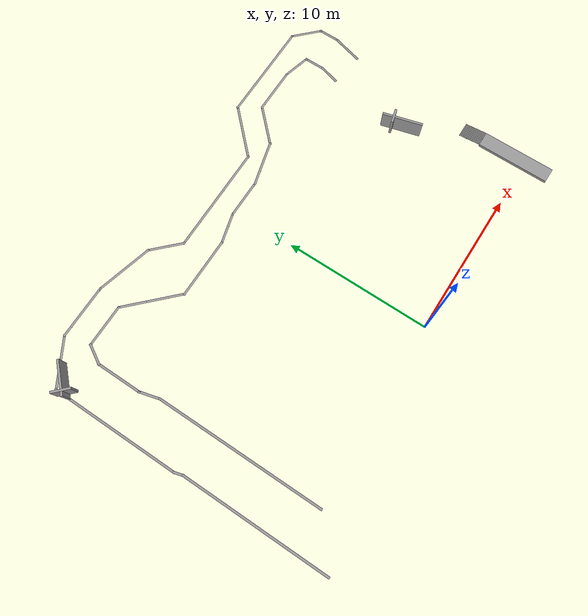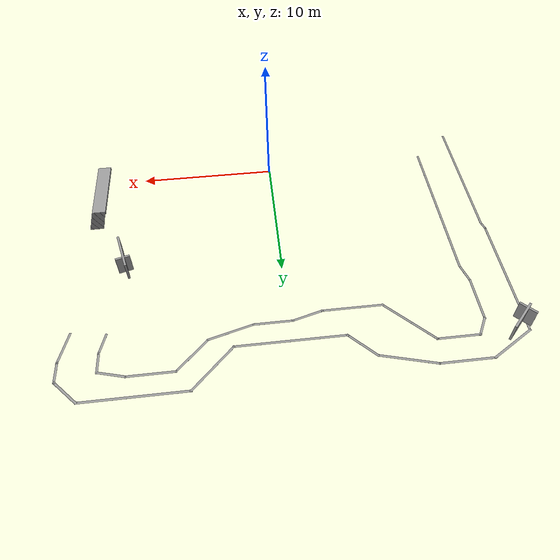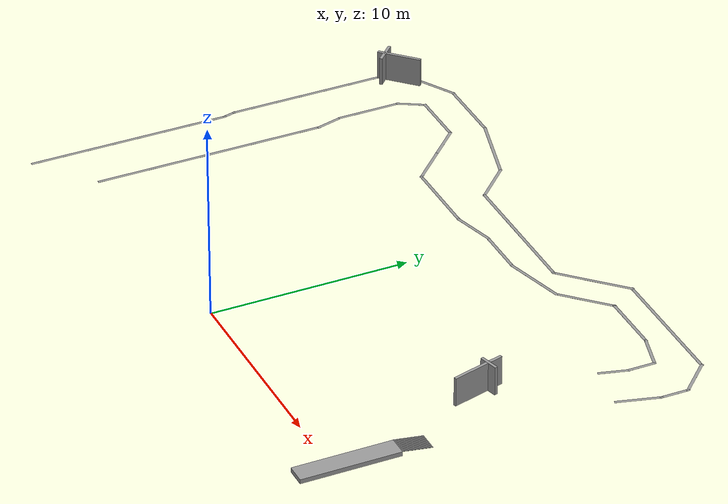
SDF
<sdf version="1.7">
 <model name="Course2023">
  <pose>-0.154528 0.080991 0 0 -0 0</pose>
  <link name="Stairs_12">
   <visual name="Stairs_12_Visual_0">
    <pose>13.5207 4.63123 0.00375 0 -0 0</pose>
    <geometry><box><size>1 0.05 0.0075</size></box></geometry>
    <material>
     <script><uri>file://media/materials/scripts/gazebo.material</uri><name>Gazebo/Grey</name></script>
     <ambient>1 1 1 1</ambient>
    </material>
    <meta><layer>0</layer></meta>
   </visual>
   <collision name="Stairs_12_Collision_0">
    <geometry><box><size>1 0.05 0.0075</size></box></geometry>
    <pose>13.5207 4.63123 0.00375 0 -0 0</pose>
   </collision>
   <visual name="Stairs_12_Visual_1">
    <pose>13.5207 4.58123 0.01125 0 -0 0</pose>
    <geometry><box><size>1 0.05 0.0075</size></box></geometry>
    <material>
     <script><uri>file://media/materials/scripts/gazebo.material</uri><name>Gazebo/Grey</name></script>
     <ambient>1 1 1 1</ambient>
    </material>
    <meta><layer>0</layer></meta>
   </visual>
   <collision name="Stairs_12_Collision_1">
    <geometry><box><size>1 0.05 0.0075</size></box></geometry>
    <pose>13.5207 4.58123 0.01125 0 -0 0</pose>
   </collision>
   <visual name="Stairs_12_Visual_2">
    <pose>13.5207 4.53123 0.01875 0 -0 0</pose>
    <geometry><box><size>1 0.05 0.0075</size></box></geometry>
    <material>
     <script><uri>file://media/materials/scripts/gazebo.material</uri><name>Gazebo/Grey</name></script>
     <ambient>1 1 1 1</ambient>
    </material>
    <meta><layer>0</layer></meta>
   </visual>
   <collision name="Stairs_12_Collision_2">
    <geometry><box><size>1 0.05 0.0075</size></box></geometry>
    <pose>13.5207 4.53123 0.01875 0 -0 0</pose>
   </collision>
   <visual name="Stairs_12_Visual_3">
    <pose>13.5207 4.48123 0.02625 0 -0 0</pose>
    <geometry><box><size>1 0.05 0.0075</size></box></geometry>
    <material>
     <script><uri>file://media/materials/scripts/gazebo.material</uri><name>Gazebo/Grey</name></script>
     <ambient>1 1 1 1</ambient>
    </material>
    <meta><layer>0</layer></meta>
   </visual>
   <collision name="Stairs_12_Collision_3">
    <geometry><box><size>1 0.05 0.0075</size></box></geometry>
    <pose>13.5207 4.48123 0.02625 0 -0 0</pose>
   </collision>
   <visual name="Stairs_12_Visual_4">
    <pose>13.5207 4.43123 0.03375 0 -0 0</pose>
    <geometry><box><size>1 0.05 0.0075</size></box></geometry>
    <material>
     <script><uri>file://media/materials/scripts/gazebo.material</uri><name>Gazebo/Grey</name></script>
     <ambient>1 1 1 1</ambient>
    </material>
    <meta><layer>0</layer></meta>
   </visual>
   <collision name="Stairs_12_Collision_4">
    <geometry><box><size>1 0.05 0.0075</size></box></geometry>
    <pose>13.5207 4.43123 0.03375 0 -0 0</pose>
   </collision>
   <visual name="Stairs_12_Visual_5">
    <pose>13.5207 4.38123 0.04125 0 -0 0</pose>
    <geometry><box><size>1 0.05 0.0075</size></box></geometry>
    <material>
     <script><uri>file://media/materials/scripts/gazebo.material</uri><name>Gazebo/Grey</name></script>
     <ambient>1 1 1 1</ambient>
    </material>
    <meta><layer>0</layer></meta>
   </visual>
   <collision name="Stairs_12_Collision_5">
    <geometry><box><size>1 0.05 0.0075</size></box></geometry>
    <pose>13.5207 4.38123 0.04125 0 -0 0</pose>
   </collision>
   <visual name="Stairs_12_Visual_6">
    <pose>13.5207 4.33123 0.04875 0 -0 0</pose>
    <geometry><box><size>1 0.05 0.0075</size></box></geometry>
    <material>
     <script><uri>file://media/materials/scripts/gazebo.material</uri><name>Gazebo/Grey</name></script>
     <ambient>1 1 1 1</ambient>
    </material>
    <meta><layer>0</layer></meta>
   </visual>
   <collision name="Stairs_12_Collision_6">
    <geometry><box><size>1 0.05 0.0075</size></box></geometry>
    <pose>13.5207 4.33123 0.04875 0 -0 0</pose>
   </collision>
   <visual name="Stairs_12_Visual_7">
    <pose>13.5207 4.28123 0.05625 0 -0 0</pose>
    <geometry><box><size>1 0.05 0.0075</size></box></geometry>
    <material>
     <script><uri>file://media/materials/scripts/gazebo.material</uri><name>Gazebo/Grey</name></script>
     <ambient>1 1 1 1</ambient>
    </material>
    <meta><layer>0</layer></meta>
   </visual>
   <collision name="Stairs_12_Collision_7">
    <geometry><box><size>1 0.05 0.0075</size></box></geometry>
    <pose>13.5207 4.28123 0.05625 0 -0 0</pose>
   </collision>
   <visual name="Stairs_12_Visual_8">
    <pose>13.5207 4.23123 0.06375 0 -0 0</pose>
    <geometry><box><size>1 0.05 0.0075</size></box></geometry>
    <material>
     <script><uri>file://media/materials/scripts/gazebo.material</uri><name>Gazebo/Grey</name></script>
     <ambient>1 1 1 1</ambient>
    </material>
    <meta><layer>0</layer></meta>
   </visual>
   <collision name="Stairs_12_Collision_8">
    <geometry><box><size>1 0.05 0.0075</size></box></geometry>
    <pose>13.5207 4.23123 0.06375 0 -0 0</pose>
   </collision>
   <visual name="Stairs_12_Visual_9">
    <pose>13.5207 4.18123 0.07125 0 -0 0</pose>
    <geometry><box><size>1 0.05 0.0075</size></box></geometry>
    <material>
     <script><uri>file://media/materials/scripts/gazebo.material</uri><name>Gazebo/Grey</name></script>
     <ambient>1 1 1 1</ambient>
    </material>
    <meta><layer>0</layer></meta>
   </visual>
   <collision name="Stairs_12_Collision_9">
    <geometry><box><size>1 0.05 0.0075</size></box></geometry>
    <pose>13.5207 4.18123 0.07125 0 -0 0</pose>
   </collision>
   <visual name="Stairs_12_Visual_10">
    <pose>13.5207 4.13123 0.07875 0 -0 0</pose>
    <geometry><box><size>1 0.05 0.0075</size></box></geometry>
    <material>
     <script><uri>file://media/materials/scripts/gazebo.material</uri><name>Gazebo/Grey</name></script>
     <ambient>1 1 1 1</ambient>
    </material>
    <meta><layer>0</layer></meta>
   </visual>
   <collision name="Stairs_12_Collision_10">
    <geometry><box><size>1 0.05 0.0075</size></box></geometry>
    <pose>13.5207 4.13123 0.07875 0 -0 0</pose>
   </collision>
   <visual name="Stairs_12_Visual_11">
    <pose>13.5207 4.08123 0.08625 0 -0 0</pose>
    <geometry><box><size>1 0.05 0.0075</size></box></geometry>
    <material>
     <script><uri>file://media/materials/scripts/gazebo.material</uri><name>Gazebo/Grey</name></script>
     <ambient>1 1 1 1</ambient>
    </material>
    <meta><layer>0</layer></meta>
   </visual>
   <collision name="Stairs_12_Collision_11">
    <geometry><box><size>1 0.05 0.0075</size></box></geometry>
    <pose>13.5207 4.08123 0.08625 0 -0 0</pose>
   </collision>
   <visual name="Stairs_12_Visual_12">
    <pose>13.5207 4.03123 0.09375 0 -0 0</pose>
    <geometry><box><size>1 0.05 0.0075</size></box></geometry>
    <material>
     <script><uri>file://media/materials/scripts/gazebo.material</uri><name>Gazebo/Grey</name></script>
     <ambient>1 1 1 1</ambient>
    </material>
    <meta><layer>0</layer></meta>
   </visual>
   <collision name="Stairs_12_Collision_12">
    <geometry><box><size>1 0.05 0.0075</size></box></geometry>
    <pose>13.5207 4.03123 0.09375 0 -0 0</pose>
   </collision>
   <visual name="Stairs_12_Visual_13">
    <pose>13.5207 3.98123 0.10125 0 -0 0</pose>
    <geometry><box><size>1 0.05 0.0075</size></box></geometry>
    <material>
     <script><uri>file://media/materials/scripts/gazebo.material</uri><name>Gazebo/Grey</name></script>
     <ambient>1 1 1 1</ambient>
    </material>
    <meta><layer>0</layer></meta>
   </visual>
   <collision name="Stairs_12_Collision_13">
    <geometry><box><size>1 0.05 0.0075</size></box></geometry>
    <pose>13.5207 3.98123 0.10125 0 -0 0</pose>
   </collision>
   <visual name="Stairs_12_Visual_14">
    <pose>13.5207 3.93123 0.10875 0 -0 0</pose>
    <geometry><box><size>1 0.05 0.0075</size></box></geometry>
    <material>
     <script><uri>file://media/materials/scripts/gazebo.material</uri><name>Gazebo/Grey</name></script>
     <ambient>1 1 1 1</ambient>
    </material>
    <meta><layer>0</layer></meta>
   </visual>
   <collision name="Stairs_12_Collision_14">
    <geometry><box><size>1 0.05 0.0075</size></box></geometry>
    <pose>13.5207 3.93123 0.10875 0 -0 0</pose>
   </collision>
   <visual name="Stairs_12_Visual_15">
    <pose>13.5207 3.88123 0.11625 0 -0 0</pose>
    <geometry><box><size>1 0.05 0.0075</size></box></geometry>
    <material>
     <script><uri>file://media/materials/scripts/gazebo.material</uri><name>Gazebo/Grey</name></script>
     <ambient>1 1 1 1</ambient>
    </material>
    <meta><layer>0</layer></meta>
   </visual>
   <collision name="Stairs_12_Collision_15">
    <geometry><box><size>1 0.05 0.0075</size></box></geometry>
    <pose>13.5207 3.88123 0.11625 0 -0 0</pose>
   </collision>
   <visual name="Stairs_12_Visual_16">
    <pose>13.5207 3.83123 0.12375 0 -0 0</pose>
    <geometry><box><size>1 0.05 0.0075</size></box></geometry>
    <material>
     <script><uri>file://media/materials/scripts/gazebo.material</uri><name>Gazebo/Grey</name></script>
     <ambient>1 1 1 1</ambient>
    </material>
    <meta><layer>0</layer></meta>
   </visual>
   <collision name="Stairs_12_Collision_16">
    <geometry><box><size>1 0.05 0.0075</size></box></geometry>
    <pose>13.5207 3.83123 0.12375 0 -0 0</pose>
   </collision>
   <visual name="Stairs_12_Visual_17">
    <pose>13.5207 3.78123 0.13125 0 -0 0</pose>
    <geometry><box><size>1 0.05 0.0075</size></box></geometry>
    <material>
     <script><uri>file://media/materials/scripts/gazebo.material</uri><name>Gazebo/Grey</name></script>
     <ambient>1 1 1 1</ambient>
    </material>
    <meta><layer>0</layer></meta>
   </visual>
   <collision name="Stairs_12_Collision_17">
    <geometry><box><size>1 0.05 0.0075</size></box></geometry>
    <pose>13.5207 3.78123 0.13125 0 -0 0</pose>
   </collision>
   <visual name="Stairs_12_Visual_18">
    <pose>13.5207 3.73123 0.13875 0 -0 0</pose>
    <geometry><box><size>1 0.05 0.0075</size></box></geometry>
    <material>
     <script><uri>file://media/materials/scripts/gazebo.material</uri><name>Gazebo/Grey</name></script>
     <ambient>1 1 1 1</ambient>
    </material>
    <meta><layer>0</layer></meta>
   </visual>
   <collision name="Stairs_12_Collision_18">
    <geometry><box><size>1 0.05 0.0075</size></box></geometry>
    <pose>13.5207 3.73123 0.13875 0 -0 0</pose>
   </collision>
   <visual name="Stairs_12_Visual_19">
    <pose>13.5207 3.68123 0.14625 0 -0 0</pose>
    <geometry><box><size>1 0.05 0.0075</size></box></geometry>
    <material>
     <script><uri>file://media/materials/scripts/gazebo.material</uri><name>Gazebo/Grey</name></script>
     <ambient>1 1 1 1</ambient>
    </material>
    <meta><layer>0</layer></meta>
   </visual>
   <collision name="Stairs_12_Collision_19">
    <geometry><box><size>1 0.05 0.0075</size></box></geometry>
    <pose>13.5207 3.68123 0.14625 0 -0 0</pose>
   </collision>
   <visual name="Stairs_12_Visual_20">
    <pose>13.5207 3.63123 0.15375 0 -0 0</pose>
    <geometry><box><size>1 0.05 0.0075</size></box></geometry>
    <material>
     <script><uri>file://media/materials/scripts/gazebo.material</uri><name>Gazebo/Grey</name></script>
     <ambient>1 1 1 1</ambient>
    </material>
    <meta><layer>0</layer></meta>
   </visual>
   <collision name="Stairs_12_Collision_20">
    <geometry><box><size>1 0.05 0.0075</size></box></geometry>
    <pose>13.5207 3.63123 0.15375 0 -0 0</pose>
   </collision>
   <visual name="Stairs_12_Visual_21">
    <pose>13.5207 3.58123 0.16125 0 -0 0</pose>
    <geometry><box><size>1 0.05 0.0075</size></box></geometry>
    <material>
     <script><uri>file://media/materials/scripts/gazebo.material</uri><name>Gazebo/Grey</name></script>
     <ambient>1 1 1 1</ambient>
    </material>
    <meta><layer>0</layer></meta>
   </visual>
   <collision name="Stairs_12_Collision_21">
    <geometry><box><size>1 0.05 0.0075</size></box></geometry>
    <pose>13.5207 3.58123 0.16125 0 -0 0</pose>
   </collision>
   <visual name="Stairs_12_Visual_22">
    <pose>13.5207 3.53123 0.16875 0 -0 0</pose>
    <geometry><box><size>1 0.05 0.0075</size></box></geometry>
    <material>
     <script><uri>file://media/materials/scripts/gazebo.material</uri><name>Gazebo/Grey</name></script>
     <ambient>1 1 1 1</ambient>
    </material>
    <meta><layer>0</layer></meta>
   </visual>
   <collision name="Stairs_12_Collision_22">
    <geometry><box><size>1 0.05 0.0075</size></box></geometry>
    <pose>13.5207 3.53123 0.16875 0 -0 0</pose>
   </collision>
   <visual name="Stairs_12_Visual_23">
    <pose>13.5207 3.48123 0.17625 0 -0 0</pose>
    <geometry><box><size>1 0.05 0.0075</size></box></geometry>
    <material>
     <script><uri>file://media/materials/scripts/gazebo.material</uri><name>Gazebo/Grey</name></script>
     <ambient>1 1 1 1</ambient>
    </material>
    <meta><layer>0</layer></meta>
   </visual>
   <collision name="Stairs_12_Collision_23">
    <geometry><box><size>1 0.05 0.0075</size></box></geometry>
    <pose>13.5207 3.48123 0.17625 0 -0 0</pose>
   </collision>
   <visual name="Stairs_12_Visual_24">
    <pose>13.5207 3.43123 0.18375 0 -0 0</pose>
    <geometry><box><size>1 0.05 0.0075</size></box></geometry>
    <material>
     <script><uri>file://media/materials/scripts/gazebo.material</uri><name>Gazebo/Grey</name></script>
     <ambient>1 1 1 1</ambient>
    </material>
    <meta><layer>0</layer></meta>
   </visual>
   <collision name="Stairs_12_Collision_24">
    <geometry><box><size>1 0.05 0.0075</size></box></geometry>
    <pose>13.5207 3.43123 0.18375 0 -0 0</pose>
   </collision>
   <visual name="Stairs_12_Visual_25">
    <pose>13.5207 3.38123 0.19125 0 -0 0</pose>
    <geometry><box><size>1 0.05 0.0075</size></box></geometry>
    <material>
     <script><uri>file://media/materials/scripts/gazebo.material</uri><name>Gazebo/Grey</name></script>
     <ambient>1 1 1 1</ambient>
    </material>
    <meta><layer>0</layer></meta>
   </visual>
   <collision name="Stairs_12_Collision_25">
    <geometry><box><size>1 0.05 0.0075</size></box></geometry>
    <pose>13.5207 3.38123 0.19125 0 -0 0</pose>
   </collision>
   <visual name="Stairs_12_Visual_26">
    <pose>13.5207 3.33123 0.19875 0 -0 0</pose>
    <geometry><box><size>1 0.05 0.0075</size></box></geometry>
    <material>
     <script><uri>file://media/materials/scripts/gazebo.material</uri><name>Gazebo/Grey</name></script>
     <ambient>1 1 1 1</ambient>
    </material>
    <meta><layer>0</layer></meta>
   </visual>
   <collision name="Stairs_12_Collision_26">
    <geometry><box><size>1 0.05 0.0075</size></box></geometry>
    <pose>13.5207 3.33123 0.19875 0 -0 0</pose>
   </collision>
   <visual name="Stairs_12_Visual_27">
    <pose>13.5207 3.28123 0.20625 0 -0 0</pose>
    <geometry><box><size>1 0.05 0.0075</size></box></geometry>
    <material>
     <script><uri>file://media/materials/scripts/gazebo.material</uri><name>Gazebo/Grey</name></script>
     <ambient>1 1 1 1</ambient>
    </material>
    <meta><layer>0</layer></meta>
   </visual>
   <collision name="Stairs_12_Collision_27">
    <geometry><box><size>1 0.05 0.0075</size></box></geometry>
    <pose>13.5207 3.28123 0.20625 0 -0 0</pose>
   </collision>
   <visual name="Stairs_12_Visual_28">
    <pose>13.5207 3.23123 0.21375 0 -0 0</pose>
    <geometry><box><size>1 0.05 0.0075</size></box></geometry>
    <material>
     <script><uri>file://media/materials/scripts/gazebo.material</uri><name>Gazebo/Grey</name></script>
     <ambient>1 1 1 1</ambient>
    </material>
    <meta><layer>0</layer></meta>
   </visual>
   <collision name="Stairs_12_Collision_28">
    <geometry><box><size>1 0.05 0.0075</size></box></geometry>
    <pose>13.5207 3.23123 0.21375 0 -0 0</pose>
   </collision>
   <visual name="Stairs_12_Visual_29">
    <pose>13.5207 3.18123 0.22125 0 -0 0</pose>
    <geometry><box><size>1 0.05 0.0075</size></box></geometry>
    <material>
     <script><uri>file://media/materials/scripts/gazebo.material</uri><name>Gazebo/Grey</name></script>
     <ambient>1 1 1 1</ambient>
    </material>
    <meta><layer>0</layer></meta>
   </visual>
   <collision name="Stairs_12_Collision_29">
    <geometry><box><size>1 0.05 0.0075</size></box></geometry>
    <pose>13.5207 3.18123 0.22125 0 -0 0</pose>
   </collision>
  </link>
  <link name="Stairs_8">
   <visual name="Stairs_8_Visual_0">
    <pose>13.5258 0.655595 0.1125 0 -0 0</pose>
    <geometry><box><size>1 5 0.225</size></box></geometry>
    <material>
     <script><uri>file://media/materials/scripts/gazebo.material</uri><name>Gazebo/Grey</name></script>
     <ambient>1 1 1 1</ambient>
    </material>
    <meta><layer>0</layer></meta>
   </visual>
   <collision name="Stairs_8_Collision_0">
    <geometry><box><size>1 5 0.225</size></box></geometry>
    <pose>13.5258 0.655595 0.1125 0 -0 0</pose>
   </collision>
  </link>
  <link name="Wall_10">
   <collision name="Wall_10_Collision">
    <geometry><box><size>3.75 0.15 0.001</size></box></geometry>
    <pose>0 0 0.0005 0 -0 0</pose>
   </collision>
   <visual name="Wall_10_Visual">
    <pose>0 0 0.0005 0 -0 0</pose>
    <geometry><box><size>3.75 0.15 0.001</size></box></geometry>
    <material>
     <script><uri>file://media/materials/scripts/gazebo.material</uri><name>Gazebo/Grey</name></script>
     <ambient>1 1 1 1</ambient>
    </material>
    <meta><layer>0</layer></meta>
   </visual>
   <pose>-10.6965 18.445 0 0 -0 3.14159</pose>
  </link>
  <link name="Wall_12">
   <collision name="Wall_12_Collision">
    <geometry><box><size>9 0.15 0.001</size></box></geometry>
    <pose>0 0 0.0005 0 -0 0</pose>
   </collision>
   <visual name="Wall_12_Visual">
    <pose>0 0 0.0005 0 -0 0</pose>
    <geometry><box><size>9 0.15 0.001</size></box></geometry>
    <material>
     <script><uri>file://media/materials/scripts/gazebo.material</uri><name>Gazebo/Grey</name></script>
     <ambient>1 1 1 1</ambient>
    </material>
    <meta><layer>0</layer></meta>
   </visual>
   <pose>-15.3975 12.345 0 0 -0 -1.5708</pose>
  </link>
  <link name="Wall_13">
   <collision name="Wall_13_Collision">
    <geometry><box><size>0.75 0.15 0.001</size></box></geometry>
    <pose>0 0 0.0005 0 -0 0</pose>
   </collision>
   <visual name="Wall_13_Visual">
    <pose>0 0 0.0005 0 -0 0</pose>
    <geometry><box><size>0.75 0.15 0.001</size></box></geometry>
    <material>
     <script><uri>file://media/materials/scripts/gazebo.material</uri><name>Gazebo/Grey</name></script>
     <ambient>1 1 1 1</ambient>
    </material>
    <meta><layer>0</layer></meta>
   </visual>
   <pose>-15.32 7.63001 0 0 -0 -1.30966</pose>
  </link>
  <link name="Wall_14">
   <collision name="Wall_14_Collision">
    <geometry><box><size>10.25 0.15 0.001</size></box></geometry>
    <pose>0 0 0.0005 0 -0 0</pose>
   </collision>
   <visual name="Wall_14_Visual">
    <pose>0 0 0.0005 0 -0 0</pose>
    <geometry><box><size>10.25 0.15 0.001</size></box></geometry>
    <material>
     <script><uri>file://media/materials/scripts/gazebo.material</uri><name>Gazebo/Grey</name></script>
     <ambient>1 1 1 1</ambient>
    </material>
    <meta><layer>0</layer></meta>
   </visual>
   <pose>-15.2425 2.29001 0 0 -0 -1.5708</pose>
  </link>
  <link name="Wall_2">
   <collision name="Wall_2_Collision">
    <geometry><box><size>2.25 0.15 0.001</size></box></geometry>
    <pose>0 0 0.0005 0 -0 0</pose>
   </collision>
   <visual name="Wall_2_Visual">
    <pose>0 0 0.0005 0 -0 0</pose>
    <geometry><box><size>2.25 0.15 0.001</size></box></geometry>
    <material>
     <script><uri>file://media/materials/scripts/gazebo.material</uri><name>Gazebo/Grey</name></script>
     <ambient>1 1 1 1</ambient>
    </material>
    <meta><layer>0</layer></meta>
   </visual>
   <pose>14.6195 14.66 0 0 -0 1.30872</pose>
  </link>
  <link name="Wall_3">
   <collision name="Wall_3_Collision">
    <geometry><box><size>1.5 0.15 0.001</size></box></geometry>
    <pose>0 0 0.0005 0 -0 0</pose>
   </collision>
   <visual name="Wall_3_Visual">
    <pose>0 0 0.0005 0 -0 0</pose>
    <geometry><box><size>1.5 0.15 0.001</size></box></geometry>
    <material>
     <script><uri>file://media/materials/scripts/gazebo.material</uri><name>Gazebo/Grey</name></script>
     <ambient>1 1 1 1</ambient>
    </material>
    <meta><layer>0</layer></meta>
   </visual>
   <pose>14.8915 16.349 0 0 -0 1.5708</pose>
  </link>
  <link name="Wall_4">
   <collision name="Wall_4_Collision">
    <geometry><box><size>2.25 0.15 0.001</size></box></geometry>
    <pose>0 0 0.0005 0 -0 0</pose>
   </collision>
   <visual name="Wall_4_Visual">
    <pose>0 0 0.0005 0 -0 0</pose>
    <geometry><box><size>2.25 0.15 0.001</size></box></geometry>
    <material>
     <script><uri>file://media/materials/scripts/gazebo.material</uri><name>Gazebo/Grey</name></script>
     <ambient>1 1 1 1</ambient>
    </material>
    <meta><layer>0</layer></meta>
   </visual>
   <pose>14.149 17.7665 0 0 -0 2.35619</pose>
  </link>
  <link name="Wall_45">
   <collision name="Wall_45_Collision">
    <geometry><box><size>11.75 0.15 0.001</size></box></geometry>
    <pose>0 0 0.0005 0 -0 0</pose>
   </collision>
   <visual name="Wall_45_Visual">
    <pose>0 0 0.0005 0 -0 0</pose>
    <geometry><box><size>11.75 0.15 0.001</size></box></geometry>
    <material>
     <script><uri>file://media/materials/scripts/gazebo.material</uri><name>Gazebo/Grey</name></script>
     <ambient>1 1 1 1</ambient>
    </material>
    <meta><layer>0</layer></meta>
   </visual>
   <pose>-12.4065 5.34801 0 0 -0 1.5708</pose>
  </link>
  <link name="Wall_46">
   <collision name="Wall_46_Collision">
    <geometry><box><size>1.5 0.15 0.001</size></box></geometry>
    <pose>0 0 0.0005 0 -0 0</pose>
   </collision>
   <visual name="Wall_46_Visual">
    <pose>0 0 0.0005 0 -0 0</pose>
    <geometry><box><size>1.5 0.15 0.001</size></box></geometry>
    <material>
     <script><uri>file://media/materials/scripts/gazebo.material</uri><name>Gazebo/Grey</name></script>
     <ambient>1 1 1 1</ambient>
    </material>
    <meta><layer>0</layer></meta>
   </visual>
   <pose>-12.581 11.8 0 0 -0 1.83231</pose>
  </link>
  <link name="Wall_47">
   <collision name="Wall_47_Collision">
    <geometry><box><size>3.25 0.15 0.001</size></box></geometry>
    <pose>0 0 0.0005 0 -0 0</pose>
   </collision>
   <visual name="Wall_47_Visual">
    <pose>0 0 0.0005 0 -0 0</pose>
    <geometry><box><size>3.25 0.15 0.001</size></box></geometry>
    <material>
     <script><uri>file://media/materials/scripts/gazebo.material</uri><name>Gazebo/Grey</name></script>
     <ambient>1 1 1 1</ambient>
    </material>
    <meta><layer>0</layer></meta>
   </visual>
   <pose>-12.7555 14.002 0 0 -0 1.5708</pose>
  </link>
  <link name="Wall_48">
   <collision name="Wall_48_Collision">
    <geometry><box><size>1.5 0.15 0.001</size></box></geometry>
    <pose>0 0 0.0005 0 -0 0</pose>
   </collision>
   <visual name="Wall_48_Visual">
    <pose>0 0 0.0005 0 -0 0</pose>
    <geometry><box><size>1.5 0.15 0.001</size></box></geometry>
    <material>
     <script><uri>file://media/materials/scripts/gazebo.material</uri><name>Gazebo/Grey</name></script>
     <ambient>1 1 1 1</ambient>
    </material>
    <meta><layer>0</layer></meta>
   </visual>
   <pose>-12.418 16.1365 0 0 -0 1.04715</pose>
  </link>
  <link name="Wall_49">
   <collision name="Wall_49_Collision">
    <geometry><box><size>3 0.15 0.001</size></box></geometry>
    <pose>0 0 0.0005 0 -0 0</pose>
   </collision>
   <visual name="Wall_49_Visual">
    <pose>0 0 0.0005 0 -0 0</pose>
    <geometry><box><size>3 0.15 0.001</size></box></geometry>
    <material>
     <script><uri>file://media/materials/scripts/gazebo.material</uri><name>Gazebo/Grey</name></script>
     <ambient>1 1 1 1</ambient>
    </material>
    <meta><layer>0</layer></meta>
   </visual>
   <pose>-10.6555 16.721 0 0 -0 0</pose>
  </link>
  <link name="Wall_5">
   <collision name="Wall_5_Collision">
    <geometry><box><size>7 0.15 0.001</size></box></geometry>
    <pose>0 0 0.0005 0 -0 0</pose>
   </collision>
   <visual name="Wall_5_Visual">
    <pose>0 0 0.0005 0 -0 0</pose>
    <geometry><box><size>7 0.15 0.001</size></box></geometry>
    <material>
     <script><uri>file://media/materials/scripts/gazebo.material</uri><name>Gazebo/Grey</name></script>
     <ambient>1 1 1 1</ambient>
    </material>
    <meta><layer>0</layer></meta>
   </visual>
   <pose>9.98153 18.509 0 0 -0 3.14159</pose>
  </link>
  <link name="Wall_50">
   <collision name="Wall_50_Collision">
    <geometry><box><size>2 0.15 0.001</size></box></geometry>
    <pose>0 0 0.0005 0 -0 0</pose>
   </collision>
   <visual name="Wall_50_Visual">
    <pose>0 0 0.0005 0 -0 0</pose>
    <geometry><box><size>2 0.15 0.001</size></box></geometry>
    <material>
     <script><uri>file://media/materials/scripts/gazebo.material</uri><name>Gazebo/Grey</name></script>
     <ambient>1 1 1 1</ambient>
    </material>
    <meta><layer>0</layer></meta>
   </visual>
   <pose>-8.57647 16.067 0 0 -0 -0.785398</pose>
  </link>
  <link name="Wall_51">
   <collision name="Wall_51_Collision">
    <geometry><box><size>2.5 0.15 0.001</size></box></geometry>
    <pose>0 0 0.0005 0 -0 0</pose>
   </collision>
   <visual name="Wall_51_Visual">
    <pose>0 0 0.0005 0 -0 0</pose>
    <geometry><box><size>2.5 0.15 0.001</size></box></geometry>
    <material>
     <script><uri>file://media/materials/scripts/gazebo.material</uri><name>Gazebo/Grey</name></script>
     <ambient>1 1 1 1</ambient>
    </material>
    <meta><layer>0</layer></meta>
   </visual>
   <pose>-7.09147 14.5825 0 0 -0 -0.785097</pose>
  </link>
  <link name="Wall_52">
   <collision name="Wall_52_Collision">
    <geometry><box><size>4.25 0.15 0.001</size></box></geometry>
    <pose>0 0 0.0005 0 -0 0</pose>
   </collision>
   <visual name="Wall_52_Visual">
    <pose>0 0 0.0005 0 -0 0</pose>
    <geometry><box><size>4.25 0.15 0.001</size></box></geometry>
    <material>
     <script><uri>file://media/materials/scripts/gazebo.material</uri><name>Gazebo/Grey</name></script>
     <ambient>1 1 1 1</ambient>
    </material>
    <meta><layer>0</layer></meta>
   </visual>
   <pose>-4.21047 13.752 0 0 -0 0</pose>
  </link>
  <link name="Wall_53">
   <collision name="Wall_53_Collision">
    <geometry><box><size>2.25 0.15 0.001</size></box></geometry>
    <pose>0 0 0.0005 0 -0 0</pose>
   </collision>
   <visual name="Wall_53_Visual">
    <pose>0 0 0.0005 0 -0 0</pose>
    <geometry><box><size>2.25 0.15 0.001</size></box></geometry>
    <material>
     <script><uri>file://media/materials/scripts/gazebo.material</uri><name>Gazebo/Grey</name></script>
     <ambient>1 1 1 1</ambient>
    </material>
    <meta><layer>0</layer></meta>
   </visual>
   <pose>-1.14647 14.0235 0 0 -0 0.261615</pose>
  </link>
  <link name="Wall_54">
   <collision name="Wall_54_Collision">
    <geometry><box><size>2.75 0.15 0.001</size></box></geometry>
    <pose>0 0 0.0005 0 -0 0</pose>
   </collision>
   <visual name="Wall_54_Visual">
    <pose>0 0 0.0005 0 -0 0</pose>
    <geometry><box><size>2.75 0.15 0.001</size></box></geometry>
    <material>
     <script><uri>file://media/materials/scripts/gazebo.material</uri><name>Gazebo/Grey</name></script>
     <ambient>1 1 1 1</ambient>
    </material>
    <meta><layer>0</layer></meta>
   </visual>
   <pose>1.16753 14.295 0 0 -0 0</pose>
  </link>
  <link name="Wall_55">
   <collision name="Wall_55_Collision">
    <geometry><box><size>3.25 0.15 0.001</size></box></geometry>
    <pose>0 0 0.0005 0 -0 0</pose>
   </collision>
   <visual name="Wall_55_Visual">
    <pose>0 0 0.0005 0 -0 0</pose>
    <geometry><box><size>3.25 0.15 0.001</size></box></geometry>
    <material>
     <script><uri>file://media/materials/scripts/gazebo.material</uri><name>Gazebo/Grey</name></script>
     <ambient>1 1 1 1</ambient>
    </material>
    <meta><layer>0</layer></meta>
   </visual>
   <pose>3.96503 14.696 0 0 -0 0.261641</pose>
  </link>
  <link name="Wall_56">
   <collision name="Wall_56_Collision">
    <geometry><box><size>3 0.15 0.001</size></box></geometry>
    <pose>0 0 0.0005 0 -0 0</pose>
   </collision>
   <visual name="Wall_56_Visual">
    <pose>0 0 0.0005 0 -0 0</pose>
    <geometry><box><size>3 0.15 0.001</size></box></geometry>
    <material>
     <script><uri>file://media/materials/scripts/gazebo.material</uri><name>Gazebo/Grey</name></script>
     <ambient>1 1 1 1</ambient>
    </material>
    <meta><layer>0</layer></meta>
   </visual>
   <pose>6.47003 16.105 0 0 -0 0.785646</pose>
  </link>
  <link name="Wall_57">
   <collision name="Wall_57_Collision">
    <geometry><box><size>3.25 0.15 0.001</size></box></geometry>
    <pose>0 0 0.0005 0 -0 0</pose>
   </collision>
   <visual name="Wall_57_Visual">
    <pose>0 0 0.0005 0 -0 0</pose>
    <geometry><box><size>3.25 0.15 0.001</size></box></geometry>
    <material>
     <script><uri>file://media/materials/scripts/gazebo.material</uri><name>Gazebo/Grey</name></script>
     <ambient>1 1 1 1</ambient>
    </material>
    <meta><layer>0</layer></meta>
   </visual>
   <pose>9.02753 17.113 0 0 -0 0</pose>
  </link>
  <link name="Wall_58">
   <collision name="Wall_58_Collision">
    <geometry><box><size>2 0.15 0.001</size></box></geometry>
    <pose>0 0 0.0005 0 -0 0</pose>
   </collision>
   <visual name="Wall_58_Visual">
    <pose>0 0 0.0005 0 -0 0</pose>
    <geometry><box><size>2 0.15 0.001</size></box></geometry>
    <material>
     <script><uri>file://media/materials/scripts/gazebo.material</uri><name>Gazebo/Grey</name></script>
     <ambient>1 1 1 1</ambient>
    </material>
    <meta><layer>0</layer></meta>
   </visual>
   <pose>11.471 16.8735 0 0 -0 -0.261891</pose>
  </link>
  <link name="Wall_59">
   <collision name="Wall_59_Collision">
    <geometry><box><size>1.5 0.15 0.001</size></box></geometry>
    <pose>0 0 0.0005 0 -0 0</pose>
   </collision>
   <visual name="Wall_59_Visual">
    <pose>0 0 0.0005 0 -0 0</pose>
    <geometry><box><size>1.5 0.15 0.001</size></box></geometry>
    <material>
     <script><uri>file://media/materials/scripts/gazebo.material</uri><name>Gazebo/Grey</name></script>
     <ambient>1 1 1 1</ambient>
    </material>
    <meta><layer>0</layer></meta>
   </visual>
   <pose>12.3645 15.959 0 0 -0 -1.5708</pose>
  </link>
  <link name="Wall_6">
   <collision name="Wall_6_Collision">
    <geometry><box><size>4 0.15 0.001</size></box></geometry>
    <pose>0 0 0.0005 0 -0 0</pose>
   </collision>
   <visual name="Wall_6_Visual">
    <pose>0 0 0.0005 0 -0 0</pose>
    <geometry><box><size>4 0.15 0.001</size></box></geometry>
    <material>
     <script><uri>file://media/materials/scripts/gazebo.material</uri><name>Gazebo/Grey</name></script>
     <ambient>1 1 1 1</ambient>
    </material>
    <meta><layer>0</layer></meta>
   </visual>
   <pose>5.19553 17.148 0 0 -0 -2.35619</pose>
  </link>
  <link name="Wall_60">
   <collision name="Wall_60_Collision">
    <geometry><box><size>1.5 0.15 0.001</size></box></geometry>
    <pose>0 0 0.0005 0 -0 0</pose>
   </collision>
   <visual name="Wall_60_Visual">
    <pose>0 0 0.0005 0 -0 0</pose>
    <geometry><box><size>1.5 0.15 0.001</size></box></geometry>
    <material>
     <script><uri>file://media/materials/scripts/gazebo.material</uri><name>Gazebo/Grey</name></script>
     <ambient>1 1 1 1</ambient>
    </material>
    <meta><layer>0</layer></meta>
   </visual>
   <pose>12.1895 14.632 0 0 -0 -1.83302</pose>
  </link>
  <link name="Wall_62">
   <collision name="Wall_62_Collision">
    <geometry><box><size>2.25 0.15 1.5</size></box></geometry>
    <pose>0 0 0.75 0 -0 0</pose>
   </collision>
   <visual name="Wall_62_Visual">
    <pose>0 0 0.75 0 -0 0</pose>
    <geometry><box><size>2.25 0.15 1.5</size></box></geometry>
    <material>
     <script><uri>file://media/materials/scripts/gazebo.material</uri><name>Gazebo/Grey</name></script>
     <ambient>1 1 1 1</ambient>
    </material>
    <meta><layer>0</layer></meta>
   </visual>
   <pose>-14.622 16.5075 0 0 -0 -2.35619</pose>
  </link>
  <link name="Wall_64">
   <collision name="Wall_64_Collision">
    <geometry><box><size>1.25 0.15 1.5</size></box></geometry>
    <pose>0 0 0.75 0 -0 0</pose>
   </collision>
   <visual name="Wall_64_Visual">
    <pose>0 0 0.75 0 -0 0</pose>
    <geometry><box><size>1.25 0.15 1.5</size></box></geometry>
    <material>
     <script><uri>file://media/materials/scripts/gazebo.material</uri><name>Gazebo/Grey</name></script>
     <ambient>1 1 1 1</ambient>
    </material>
    <meta><layer>0</layer></meta>
   </visual>
   <pose>-15.1725 16.004 0 0 -0 -0.785398</pose>
  </link>
  <link name="Wall_66">
   <collision name="Wall_66_Collision">
    <geometry><box><size>2.75 0.15 1.5</size></box></geometry>
    <pose>0 0 0.75 0 -0 0</pose>
   </collision>
   <visual name="Wall_66_Visual">
    <pose>0 0 0.75 0 -0 0</pose>
    <geometry><box><size>2.75 0.15 1.5</size></box></geometry>
    <material>
     <script><uri>file://media/materials/scripts/gazebo.material</uri><name>Gazebo/Grey</name></script>
     <ambient>1 1 1 1</ambient>
    </material>
    <meta><layer>0</layer></meta>
   </visual>
   <pose>11.174 8.25451 0 0 -0 -1.30893</pose>
  </link>
  <link name="Wall_68">
   <collision name="Wall_68_Collision">
    <geometry><box><size>1 0.15 1.5</size></box></geometry>
    <pose>0 0 0.75 0 -0 0</pose>
   </collision>
   <visual name="Wall_68_Visual">
    <pose>0 0 0.75 0 -0 0</pose>
    <geometry><box><size>1 0.15 1.5</size></box></geometry>
    <material>
     <script><uri>file://media/materials/scripts/gazebo.material</uri><name>Gazebo/Grey</name></script>
     <ambient>1 1 1 1</ambient>
    </material>
    <meta><layer>0</layer></meta>
   </visual>
   <pose>11.065 8.85601 0 0 -0 0.261815</pose>
  </link>
  <link name="Wall_7">
   <collision name="Wall_7_Collision">
    <geometry><box><size>7.5 0.15 0.001</size></box></geometry>
    <pose>0 0 0.0005 0 -0 0</pose>
   </collision>
   <visual name="Wall_7_Visual">
    <pose>0 0 0.0005 0 -0 0</pose>
    <geometry><box><size>7.5 0.15 0.001</size></box></geometry>
    <material>
     <script><uri>file://media/materials/scripts/gazebo.material</uri><name>Gazebo/Grey</name></script>
     <ambient>1 1 1 1</ambient>
    </material>
    <meta><layer>0</layer></meta>
   </visual>
   <pose>0.159528 15.787 0 0 -0 3.14159</pose>
  </link>
  <link name="Wall_8">
   <collision name="Wall_8_Collision">
    <geometry><box><size>2.5 0.15 0.001</size></box></geometry>
    <pose>0 0 0.0005 0 -0 0</pose>
   </collision>
   <visual name="Wall_8_Visual">
    <pose>0 0 0.0005 0 -0 0</pose>
    <geometry><box><size>2.5 0.15 0.001</size></box></geometry>
    <material>
     <script><uri>file://media/materials/scripts/gazebo.material</uri><name>Gazebo/Grey</name></script>
     <ambient>1 1 1 1</ambient>
    </material>
    <meta><layer>0</layer></meta>
   </visual>
   <pose>-4.34647 16.618 0 0 -0 2.35619</pose>
  </link>
  <link name="Wall_86">
   <collision name="Wall_86_Collision">
    <geometry><box><size>3.49984 0.15 0.001</size></box></geometry>
    <pose>0 0 0.0005 0 -0 0</pose>
   </collision>
   <visual name="Wall_86_Visual">
    <pose>0 0 0.0005 0 -0 0</pose>
    <geometry><box><size>3.49984 0.15 0.001</size></box></geometry>
    <material>
     <script><uri>file://media/materials/scripts/gazebo.material</uri><name>Gazebo/Grey</name></script>
     <ambient>1 1 1 1</ambient>
    </material>
    <meta><layer>0</layer></meta>
   </visual>
   <pose>-13.947 17.6075 0 0 -0 0.523626</pose>
  </link>
  <link name="Wall_9">
   <collision name="Wall_9_Collision">
    <geometry><box><size>4 0.15 0.001</size></box></geometry>
    <pose>0 0 0.0005 0 -0 0</pose>
   </collision>
   <visual name="Wall_9_Visual">
    <pose>0 0 0.0005 0 -0 0</pose>
    <geometry><box><size>4 0.15 0.001</size></box></geometry>
    <material>
     <script><uri>file://media/materials/scripts/gazebo.material</uri><name>Gazebo/Grey</name></script>
     <ambient>1 1 1 1</ambient>
    </material>
    <meta><layer>0</layer></meta>
   </visual>
   <pose>-7.03697 17.947 0 0 -0 2.87992</pose>
  </link>
  <static>1</static>
 </model>
</sdf>
